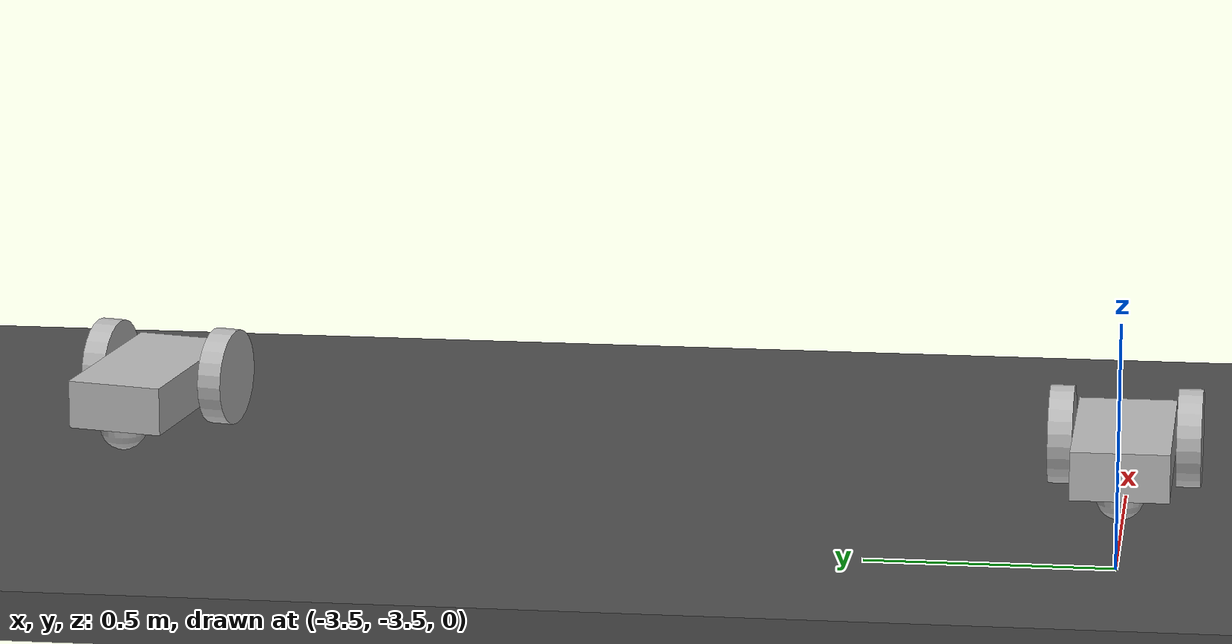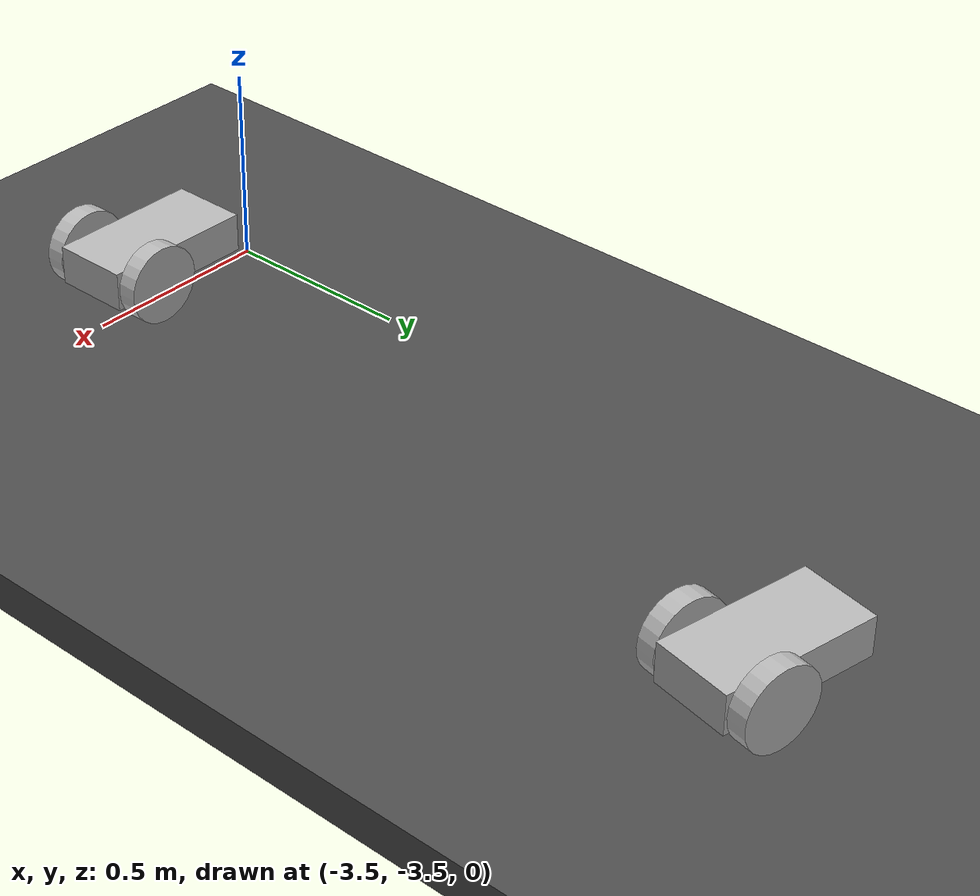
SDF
<sdf version="1.6">
 <world name="default">
  <model name="ground_plane">
   <static>1</static>
   <link name="link">
    <collision name="collision">
     <geometry><plane><normal>0 0 1</normal><size>100 100</size></plane></geometry>
     <surface><friction><ode><mu>100</mu><mu2>50</mu2></ode></friction></surface>
    </collision>
    <visual name="visual">
     <cast_shadows>0</cast_shadows>
     <geometry><plane><normal>0 0 1</normal><size>100 100</size></plane></geometry>
     <material>
      <script><uri>file://media/materials/scripts/gazebo.material</uri><name>Gazebo/Grey</name></script>
     </material>
    </visual>
   </link>
  </model>
  <model name="asphalt_plane">
   <static>1</static>
   <link name="link">
    <collision name="collision"><geometry><box><size>20 20 0.1</size></box></geometry></collision>
    <visual name="visual">
     <cast_shadows>0</cast_shadows>
     <geometry><box><size>20 20 0.1</size></box></geometry>
     <material>
      <script>
       <uri>model://asphalt_plane/materials/scripts</uri>
       <uri>model://asphalt_plane/materials/textures</uri>
       <name>vrc/asphalt</name>
      </script>
     </material>
    </visual>
   </link>
   <pose>0.031338 -0.069271 0 0 -0 0</pose>
  </model>
  <model name="my_robot_0">
   <static>0</static>
   <link name="chassis">
    <pose>0 0 0.1 0 -0 0</pose>
    <collision name="collision"><geometry><box><size>0.4 0.2 0.1</size></box></geometry></collision>
    <visual name="visual"><geometry><box><size>0.4 0.2 0.1</size></box></geometry></visual>
    <collision name="caster_collision">
     <pose>-0.15 0 -0.05 0 -0 0</pose>
     <geometry><sphere><radius>0.05</radius></sphere></geometry>
     <surface><friction><ode><mu>0</mu><mu2>0</mu2><slip1>1</slip1><slip2>1</slip2></ode></friction></surface>
    </collision>
    <visual name="caster_visual">
     <pose>-0.15 0 -0.05 0 -0 0</pose>
     <geometry><sphere><radius>0.05</radius></sphere></geometry>
    </visual>
    <inertial>
     <inertia><ixx>1</ixx><ixy>0</ixy><ixz>0</ixz><iyy>1</iyy><iyz>0</iyz><izz>1</izz></inertia>
     <mass>1</mass>
    </inertial>
   </link>
   <link name="left_wheel">
    <pose>0.1 0.13 0.1 -0 1.5707 1.5707</pose>
    <collision name="collision">
     <geometry><cylinder><radius>0.1</radius><length>0.05</length></cylinder></geometry>
    </collision>
    <visual name="visual">
     <geometry><cylinder><radius>0.1</radius><length>0.05</length></cylinder></geometry>
    </visual>
    <inertial>
     <inertia><ixx>1</ixx><ixy>0</ixy><ixz>0</ixz><iyy>1</iyy><iyz>0</iyz><izz>1</izz></inertia>
     <mass>1</mass>
    </inertial>
   </link>
   <link name="right_wheel">
    <pose>0.1 -0.13 0.1 -0 1.5707 1.5707</pose>
    <collision name="collision">
     <geometry><cylinder><radius>0.1</radius><length>0.05</length></cylinder></geometry>
    </collision>
    <visual name="visual">
     <geometry><cylinder><radius>0.1</radius><length>0.05</length></cylinder></geometry>
    </visual>
    <inertial>
     <inertia><ixx>1</ixx><ixy>0</ixy><ixz>0</ixz><iyy>1</iyy><iyz>0</iyz><izz>1</izz></inertia>
     <mass>1</mass>
    </inertial>
   </link>
   <link name="center">
    <pose>0 0 0.1 -0 1.5707 1.5707</pose>
    <collision name="collision">
     <geometry><cylinder><radius>0.1</radius><length>0.05</length></cylinder></geometry>
    </collision>
    <inertial>
     <inertia><ixx>1</ixx><ixy>0</ixy><ixz>0</ixz><iyy>1</iyy><iyz>0</iyz><izz>1</izz></inertia>
     <mass>1</mass>
    </inertial>
   </link>
   <joint name="center_hinge" type="revolute">
    <pose>0 0 -0.03 0 -0 0</pose>
    <child>center</child>
    <parent>chassis</parent>
    <axis>
     <xyz>0 1 0</xyz>
     <use_parent_model_frame>1</use_parent_model_frame>
     <limit><lower>-1e+16</lower><upper>1e+16</upper></limit>
     <dynamics><spring_reference>0</spring_reference><spring_stiffness>0</spring_stiffness></dynamics>
    </axis>
   </joint>
   <joint name="left_wheel_hinge" type="revolute">
    <pose>0 0 -0.03 0 -0 0</pose>
    <child>left_wheel</child>
    <parent>chassis</parent>
    <axis>
     <xyz>0 1 0</xyz>
     <use_parent_model_frame>1</use_parent_model_frame>
     <limit><lower>-1e+16</lower><upper>1e+16</upper></limit>
     <dynamics><spring_reference>0</spring_reference><spring_stiffness>0</spring_stiffness></dynamics>
    </axis>
   </joint>
   <joint name="right_wheel_hinge" type="revolute">
    <pose>0 0 0.03 0 -0 0</pose>
    <child>right_wheel</child>
    <parent>chassis</parent>
    <axis>
     <xyz>0 1 0</xyz>
     <use_parent_model_frame>1</use_parent_model_frame>
     <limit><lower>-1e+16</lower><upper>1e+16</upper></limit>
     <dynamics><spring_reference>0</spring_reference><spring_stiffness>0</spring_stiffness></dynamics>
    </axis>
   </joint>
   <pose>-2.9167 -1.45635 0.050002 5e-06 4e-06 -0.193217</pose>
  </model>
  <model name="my_robot_7">
   <static>0</static>
   <link name="chassis">
    <pose>0 0 0.1 0 -0 0</pose>
    <collision name="collision"><geometry><box><size>0.4 0.2 0.1</size></box></geometry></collision>
    <visual name="visual"><geometry><box><size>0.4 0.2 0.1</size></box></geometry></visual>
    <collision name="caster_collision">
     <pose>-0.15 0 -0.05 0 -0 0</pose>
     <geometry><sphere><radius>0.05</radius></sphere></geometry>
     <surface><friction><ode><mu>0</mu><mu2>0</mu2><slip1>1</slip1><slip2>1</slip2></ode></friction></surface>
    </collision>
    <visual name="caster_visual">
     <pose>-0.15 0 -0.05 0 -0 0</pose>
     <geometry><sphere><radius>0.05</radius></sphere></geometry>
    </visual>
    <inertial>
     <inertia><ixx>1</ixx><ixy>0</ixy><ixz>0</ixz><iyy>1</iyy><iyz>0</iyz><izz>1</izz></inertia>
     <mass>1</mass>
    </inertial>
   </link>
   <link name="left_wheel">
    <pose>0.1 0.13 0.1 -0 1.5707 1.5707</pose>
    <collision name="collision">
     <geometry><cylinder><radius>0.1</radius><length>0.05</length></cylinder></geometry>
    </collision>
    <visual name="visual">
     <geometry><cylinder><radius>0.1</radius><length>0.05</length></cylinder></geometry>
    </visual>
    <inertial>
     <inertia><ixx>1</ixx><ixy>0</ixy><ixz>0</ixz><iyy>1</iyy><iyz>0</iyz><izz>1</izz></inertia>
     <mass>1</mass>
    </inertial>
   </link>
   <link name="right_wheel">
    <pose>0.1 -0.13 0.1 -0 1.5707 1.5707</pose>
    <collision name="collision">
     <geometry><cylinder><radius>0.1</radius><length>0.05</length></cylinder></geometry>
    </collision>
    <visual name="visual">
     <geometry><cylinder><radius>0.1</radius><length>0.05</length></cylinder></geometry>
    </visual>
    <inertial>
     <inertia><ixx>1</ixx><ixy>0</ixy><ixz>0</ixz><iyy>1</iyy><iyz>0</iyz><izz>1</izz></inertia>
     <mass>1</mass>
    </inertial>
   </link>
   <link name="center">
    <pose>0 0 0.1 -0 1.5707 1.5707</pose>
    <collision name="collision">
     <geometry><cylinder><radius>0.1</radius><length>0.05</length></cylinder></geometry>
    </collision>
    <inertial>
     <inertia><ixx>1</ixx><ixy>0</ixy><ixz>0</ixz><iyy>1</iyy><iyz>0</iyz><izz>1</izz></inertia>
     <mass>1</mass>
    </inertial>
   </link>
   <joint name="center_hinge" type="revolute">
    <pose>0 0 -0.03 0 -0 0</pose>
    <child>center</child>
    <parent>chassis</parent>
    <axis>
     <xyz>0 1 0</xyz>
     <use_parent_model_frame>1</use_parent_model_frame>
     <limit><lower>-1e+16</lower><upper>1e+16</upper></limit>
     <dynamics><spring_reference>0</spring_reference><spring_stiffness>0</spring_stiffness></dynamics>
    </axis>
   </joint>
   <joint name="left_wheel_hinge" type="revolute">
    <pose>0 0 -0.03 0 -0 0</pose>
    <child>left_wheel</child>
    <parent>chassis</parent>
    <axis>
     <xyz>0 1 0</xyz>
     <use_parent_model_frame>1</use_parent_model_frame>
     <limit><lower>-1e+16</lower><upper>1e+16</upper></limit>
     <dynamics><spring_reference>0</spring_reference><spring_stiffness>0</spring_stiffness></dynamics>
    </axis>
   </joint>
   <joint name="right_wheel_hinge" type="revolute">
    <pose>0 0 0.03 0 -0 0</pose>
    <child>right_wheel</child>
    <parent>chassis</parent>
    <axis>
     <xyz>0 1 0</xyz>
     <use_parent_model_frame>1</use_parent_model_frame>
     <limit><lower>-1e+16</lower><upper>1e+16</upper></limit>
     <dynamics><spring_reference>0</spring_reference><spring_stiffness>0</spring_stiffness></dynamics>
    </axis>
   </joint>
   <pose>-3.17353 -3.49836 0.050002 -1e-06 -2e-06 -0.002296</pose>
  </model>
 </world>
</sdf>
